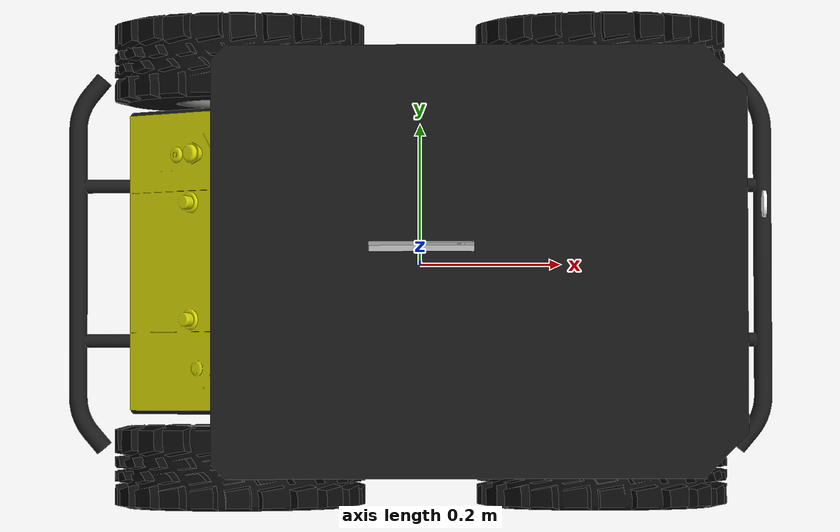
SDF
<?xml version='1.0' encoding='utf-8'?>
<sdf version="1.6">
  <model name="costar_husky_sensor_config_1">
    <link name="base_link">
      <pose frame="">0 0 0 0 -0 0</pose>
      <inertial>
        <pose frame="">0 0 0.062329 0 -0 0</pose>
        <mass>46.064</mass>
        <inertia>
          <ixx>0.615397</ixx>
          <ixy>-0.0240585</ixy>
          <ixz>-0.120749</ixz>
          <iyy>1.75388</iyy>
          <iyz>-0.0028322</iyz>
          <izz>2.03641</izz>
        </inertia>
      </inertial>
      <collision name="base_link_collision">
        <pose frame="">0 0 0.12 0 0 0</pose>
        <geometry>
          <box>
            <size>0.9874 0.5709 0.05</size>
          </box>
        </geometry>
      </collision>
      <collision name="base_link_collision_bottom">
        <pose frame="">0 0 0.046 0 0 0</pose>
        <geometry>
          <box>
            <size>0.80 0.5709 0.095</size>
          </box>
        </geometry>
      </collision>
      <collision name="base_link_collision_1">
        <pose frame="">0 0 0.185625 0 -0 0</pose>
        <geometry>
          <box>
            <size>0.78992 0.5709 0.12375</size>
          </box>
        </geometry>
      </collision>
      <collision name="base_link_fixed_joint_lump__camera/camera_link_collision_2">
        <pose frame="">0.488 0 0.272 0 -0 0</pose>
        <geometry>
          <box>
            <size>0.0078 0.13 0.0192</size>
          </box>
        </geometry>
        <surface>
          <contact>
            <ode>
              <kp>1e+13</kp>
              <kd>1</kd>
            </ode>
          </contact>
          <friction>
            <ode>
              <mu2>1</mu2>
              <fdir1>0 0 0</fdir1>
            </ode>
          </friction>
        </surface>
      </collision>
      <collision name="base_link_fixed_joint_lump__top_plate_link_collision_3">
        <pose frame="">0.0812 0 0.245 0 -0 0</pose>
        <geometry>
          <mesh>
            <scale>1 1 1</scale>
            <uri>meshes/top_plate.dae</uri>
          </mesh>
        </geometry>
      </collision>
      <collision name="base_link_fixed_joint_lump__top_plate_link_collision_4">
        <pose frame="">0.0812 0 0.245 0 -0 0</pose>
        <geometry>
          <box>
            <size>0.32 0.41 0.09</size>
          </box>
        </geometry>
      </collision>
      <visual name="base_link_visual">
        <pose frame="">0 0 0 0 -0 0</pose>
        <geometry>
          <mesh>
            <scale>1 1 1</scale>
            <uri>meshes/base_link.dae</uri>
          </mesh>
        </geometry>
      </visual>
      <visual name="base_link_fixed_joint_lump__camera/camera_link_visual_1">
        <pose frame="">0.0012 0 0.716 0 -0.3 1.57079632679</pose>
        <geometry>
          <mesh>
            <uri>meshes/realsense.dae</uri>
          </mesh>
        </geometry>
      </visual>
      <visual name="base_link_fixed_joint_lump__front_bumper_link_visual_3">
        <pose frame="">0.48 0 0.091 0 -0 0</pose>
        <geometry>
          <mesh>
            <scale>1 1 1</scale>
            <uri>meshes/bumper.dae</uri>
          </mesh>
        </geometry>
      </visual>
      <visual name="base_link_fixed_joint_lump__rear_bumper_link_visual_4">
        <pose frame="">-0.48 0 0.091 0 -0 3.14159</pose>
        <geometry>
          <mesh>
            <scale>1 1 1</scale>
            <uri>meshes/bumper.dae</uri>
          </mesh>
        </geometry>
      </visual>
      <visual name="base_link_fixed_joint_lump__top_chassis_link_visual_5">
        <pose frame="">0 0 0 0 -0 0</pose>
        <geometry>
          <mesh>
            <scale>1 1 1</scale>
            <uri>meshes/top_chassis.dae</uri>
          </mesh>
        </geometry>
      </visual>
      <visual name="base_link_fixed_joint_lump__top_plate_link_visual_6">
        <pose frame="">0.0812 0 0.245 0 -0 0</pose>
        <geometry>
          <mesh>
            <scale>1 1 1</scale>
            <uri>meshes/top_plate.dae</uri>
          </mesh>
        </geometry>
      </visual>
      <velocity_decay />
      <self_collide>0</self_collide>
      <enable_wind>0</enable_wind>
      <kinematic>0</kinematic>
      <sensor name="realsense_d435" type="rgbd_camera">
        <update_rate>30</update_rate>
        <pose frame="">0.0012 0 0.716 0 -0.3 1.5708</pose>
        <camera name="camera">
          <horizontal_fov>1.0472</horizontal_fov>
          <lens>
            <intrinsics>
              <!-- fx = fy = width / ( 2 * tan (hfov / 2 ) ) -->
              <fx>554.25469</fx>
              <fy>554.25469</fy>
              <!-- cx = ( width + 1 ) / 2 -->
              <cx>320.5</cx>
              <!-- cy = ( height + 1 ) / 2 -->
              <cy>240.5</cy>
              <s>0</s>
            </intrinsics>
          </lens>
          <distortion>
            <k1>0.0</k1>
            <k2>0.0</k2>
            <k3>0.0</k3>
            <p1>0.0</p1>
            <p2>0.0</p2>
            <center>0.5 0.5</center>
          </distortion>
          <image>
            <width>1080</width>
            <height>1380</height>
            <format>R8G8B8</format>
          </image>
          <clip>
            <near>0.01</near>
            <far>300</far>
          </clip>
          <depth_camera>
            <clip>
              <near>0.1</near>
              <far>10</far>
            </clip>
          </depth_camera>
          <noise>
            <type>gaussian</type>
            <mean>0</mean>
            <stddev>0.007</stddev>
          </noise>
        </camera>
      </sensor>
      <gravity>1</gravity>
      <velocity_decay />

      <!-- GPS -->
      <sensor name="gps" type="navsat">
        <spherical_coordinates>-34.67093619854793 -56.34362977503078 0</spherical_coordinates>
      </sensor>
      <light name="flashlight_flashlight_light_source_lamp_light" type="spot">
        <pose frame="">0.48 0.08 0.12 3.141592653589793 1.5707926535897934 -0.0015926535897931</pose>
        <attenuation>
          <range>50</range>
          <linear>0</linear>
          <constant>0.1</constant>
          <quadratic>0.0025</quadratic>
        </attenuation>
        <diffuse>0.8 0.8 0.5 1</diffuse>
        <specular>0.8 0.8 0.5 1</specular>
        <spot>
          <inner_angle>1.2</inner_angle>
          <outer_angle>1.3</outer_angle>
          <falloff>1</falloff>
        </spot>
        <direction>0 0 -1</direction>
      </light>
      <visual name="flashlight_flashlight_light_source_lamp_viz_visual">
        <pose>0.48 0.08 0.12 3.141592653589793 1.5707926535897934 -0.0015926535897931</pose>
        <geometry>
          <cylinder>
            <radius>0.019</radius>
            <length>0.005</length>
          </cylinder>
        </geometry>
        <transparency>0</transparency>
        <material>
          <ambient>1 1 1 1</ambient>
          <diffuse>1 1 1 1</diffuse>
          <specular>1 1 1 1</specular>
          <emissive>1 1 1 1</emissive>
        </material>
      </visual>

      <sensor name="imu_sensor" type="imu">
        <always_on>1</always_on>
        <update_rate>50</update_rate>
        <imu>
          <enable_orientation>0</enable_orientation>
          <angular_velocity>
            <x>
              <noise type="gaussian">
                <mean>0</mean>
                <stddev>0.009</stddev>
                <bias_mean>0.00075</bias_mean>
                <bias_stddev>0.005</bias_stddev>
                <dynamic_bias_stddev>0.00002</dynamic_bias_stddev>
                <dynamic_bias_correlation_time>400.0</dynamic_bias_correlation_time>
                <precision>0.00025</precision>
              </noise>
            </x>
            <y>
              <noise type="gaussian">
                <mean>0</mean>
                <stddev>0.009</stddev>
                <bias_mean>0.00075</bias_mean>
                <bias_stddev>0.005</bias_stddev>
                <dynamic_bias_stddev>0.00002</dynamic_bias_stddev>
                <dynamic_bias_correlation_time>400.0</dynamic_bias_correlation_time>
                <precision>0.00025</precision>
              </noise>
            </y>
            <z>
              <noise type="gaussian">
                <mean>0</mean>
                <stddev>0.009</stddev>
                <bias_mean>0.00075</bias_mean>
                <bias_stddev>0.005</bias_stddev>
                <dynamic_bias_stddev>0.00002</dynamic_bias_stddev>
                <dynamic_bias_correlation_time>400.0</dynamic_bias_correlation_time>
                <precision>0.00025</precision>
              </noise>
            </z>
          </angular_velocity>
          <linear_acceleration>
            <x>
              <noise type="gaussian">
                <mean>0</mean>
                <stddev>0.021</stddev>
                <bias_mean>0.05</bias_mean>
                <bias_stddev>0.0075</bias_stddev>
                <dynamic_bias_stddev>0.000375</dynamic_bias_stddev>
                <dynamic_bias_correlation_time>175.0</dynamic_bias_correlation_time>
                <precision>0.005</precision>
              </noise>
            </x>
            <y>
              <noise type="gaussian">
                <mean>0</mean>
                <stddev>0.021</stddev>
                <bias_mean>0.05</bias_mean>
                <bias_stddev>0.0075</bias_stddev>
                <dynamic_bias_stddev>0.000375</dynamic_bias_stddev>
                <dynamic_bias_correlation_time>175.0</dynamic_bias_correlation_time>
                <precision>0.005</precision>
              </noise>
            </y>
            <z>
              <noise type="gaussian">
                <mean>0</mean>
                <stddev>0.021</stddev>
                <bias_mean>0.05</bias_mean>
                <bias_stddev>0.0075</bias_stddev>
                <dynamic_bias_stddev>0.000375</dynamic_bias_stddev>
                <dynamic_bias_correlation_time>175.0</dynamic_bias_correlation_time>
                <precision>0.005</precision>
              </noise>
            </z>
          </linear_acceleration>
        </imu>
      </sensor>
    </link>
    <link name="front_left_wheel_link">
      <pose frame="">0.256 0.2854 0.03282 0 -0 0</pose>
      <inertial>
        <pose frame="">0 0 0 0 -0 0</pose>
        <mass>2.637</mass>
        <inertia>
          <ixx>0.02467</ixx>
          <ixy>0</ixy>
          <ixz>0</ixz>
          <iyy>0.04411</iyy>
          <iyz>0</iyz>
          <izz>0.02467</izz>
        </inertia>
      </inertial>
      <collision name="front_left_wheel_link_collision">
        <pose frame="">0 0 0 1.5707963267948966 -0 0</pose>
        <geometry>
          <cylinder>
            <length>0.1143</length>
            <radius>0.1651</radius>
          </cylinder>
        </geometry>
        <surface>
          <contact>
            <ode>
              <kp>1e+07</kp>
              <kd>1</kd>
            </ode>
          </contact>
          <friction>
            <ode>
              <mu>0.5</mu>
              <mu2>1</mu2>
              <slip1>0.00062</slip1>
              <slip2>0</slip2>
              <fdir1>0 0 1</fdir1>
            </ode>
          </friction>
        </surface>
      </collision>
      <visual name="front_left_wheel_link_visual">
        <pose frame="">0 0 0 0 -0 0</pose>
        <geometry>
          <mesh>
            <scale>1 1 1</scale>
            <uri>meshes/wheel.dae</uri>
          </mesh>
        </geometry>
      </visual>
      <gravity>1</gravity>
      <velocity_decay />
    </link>
    <joint name="front_left_wheel_joint" type="revolute">
      <child>front_left_wheel_link</child>
      <parent>base_link</parent>
      <axis>
        <xyz>0 1 0</xyz>
        <limit>
          <lower>-1e+16</lower>
          <upper>1e+16</upper>
        </limit>
        <dynamics>
          <spring_reference>0</spring_reference>
          <spring_stiffness>0</spring_stiffness>
        </dynamics>
        <use_parent_model_frame>1</use_parent_model_frame>
      </axis>
    </joint>
    <link name="front_right_wheel_link">
      <pose frame="">0.256 -0.2854 0.03282 0 -0 0</pose>
      <inertial>
        <pose frame="">0 0 0 0 -0 0</pose>
        <mass>2.637</mass>
        <inertia>
          <ixx>0.02467</ixx>
          <ixy>0</ixy>
          <ixz>0</ixz>
          <iyy>0.04411</iyy>
          <iyz>0</iyz>
          <izz>0.02467</izz>
        </inertia>
      </inertial>
      <collision name="front_right_wheel_link_collision">
        <pose frame="">0 0 0 1.5707963267948966 -0 0</pose>
        <geometry>
          <cylinder>
            <length>0.1143</length>
            <radius>0.1651</radius>
          </cylinder>
        </geometry>
        <surface>
          <contact>
            <ode>
              <kp>1e+07</kp>
              <kd>1</kd>
            </ode>
          </contact>
          <friction>
            <ode>
              <mu>0.5</mu>
              <mu2>1</mu2>
              <slip1>0.00062</slip1>
              <slip2>0</slip2>
              <fdir1>0 0 1</fdir1>
            </ode>
          </friction>
        </surface>
      </collision>
      <visual name="front_right_wheel_link_visual">
        <pose frame="">0 0 0 0 -0 0</pose>
        <geometry>
          <mesh>
            <scale>1 1 1</scale>
            <uri>meshes/wheel.dae</uri>
          </mesh>
        </geometry>
      </visual>
      <gravity>1</gravity>
      <velocity_decay />
    </link>
    <joint name="front_right_wheel_joint" type="revolute">
      <child>front_right_wheel_link</child>
      <parent>base_link</parent>
      <axis>
        <xyz>0 1 0</xyz>
        <limit>
          <lower>-1e+16</lower>
          <upper>1e+16</upper>
        </limit>
        <dynamics>
          <spring_reference>0</spring_reference>
          <spring_stiffness>0</spring_stiffness>
        </dynamics>
        <use_parent_model_frame>1</use_parent_model_frame>
      </axis>
    </joint>
    <link name="rear_left_wheel_link">
      <pose frame="">-0.256 0.2854 0.03282 0 -0 0</pose>
      <inertial>
        <pose frame="">0 0 0 0 -0 0</pose>
        <mass>2.637</mass>
        <inertia>
          <ixx>0.02467</ixx>
          <ixy>0</ixy>
          <ixz>0</ixz>
          <iyy>0.04411</iyy>
          <iyz>0</iyz>
          <izz>0.02467</izz>
        </inertia>
      </inertial>
      <collision name="rear_left_wheel_link_collision">
        <pose frame="">0 0 0 1.5707963267948966 -0 0</pose>
        <geometry>
          <cylinder>
            <length>0.1143</length>
            <radius>0.1651</radius>
          </cylinder>
        </geometry>
        <surface>
          <contact>
            <ode>
              <kp>1e+07</kp>
              <kd>1</kd>
            </ode>
          </contact>
          <friction>
            <ode>
              <mu>0.5</mu>
              <mu2>1</mu2>
              <slip1>0.00062</slip1>
              <slip2>0</slip2>
              <fdir1>0 0 1</fdir1>
            </ode>
          </friction>
        </surface>
      </collision>
      <visual name="rear_left_wheel_link_visual">
        <pose frame="">0 0 0 0 -0 0</pose>
        <geometry>
          <mesh>
            <scale>1 1 1</scale>
            <uri>meshes/wheel.dae</uri>
          </mesh>
        </geometry>
      </visual>
      <gravity>1</gravity>
      <velocity_decay />
    </link>
    <joint name="rear_left_wheel_joint" type="revolute">
      <child>rear_left_wheel_link</child>
      <parent>base_link</parent>
      <axis>
        <xyz>0 1 0</xyz>
        <limit>
          <lower>-1e+16</lower>
          <upper>1e+16</upper>
        </limit>
        <dynamics>
          <spring_reference>0</spring_reference>
          <spring_stiffness>0</spring_stiffness>
        </dynamics>
        <use_parent_model_frame>1</use_parent_model_frame>
      </axis>
    </joint>
    <link name="rear_right_wheel_link">
      <pose frame="">-0.256 -0.2854 0.03282 0 -0 0</pose>
      <inertial>
        <pose frame="">0 0 0 0 -0 0</pose>
        <mass>2.637</mass>
        <inertia>
          <ixx>0.02467</ixx>
          <ixy>0</ixy>
          <ixz>0</ixz>
          <iyy>0.04411</iyy>
          <iyz>0</iyz>
          <izz>0.02467</izz>
        </inertia>
      </inertial>
      <collision name="rear_right_wheel_link_collision">
        <pose frame="">0 0 0 1.5707963267948966 -0 0</pose>
        <geometry>
          <cylinder>
            <length>0.1143</length>
            <radius>0.1651</radius>
          </cylinder>
        </geometry>
        <surface>
          <contact>
            <ode>
              <kp>1e+07</kp>
              <kd>1</kd>
            </ode>
          </contact>
          <friction>
            <ode>
              <mu>0.5</mu>
              <mu2>1</mu2>
              <slip1>0.00062</slip1>
              <slip2>0</slip2>
              <fdir1>0 0 1</fdir1>
            </ode>
          </friction>
        </surface>
      </collision>
      <visual name="rear_right_wheel_link_visual">
        <pose frame="">0 0 0 0 -0 0</pose>
        <geometry>
          <mesh>
            <scale>1 1 1</scale>
            <uri>meshes/wheel.dae</uri>
          </mesh>
        </geometry>
      </visual>
      <gravity>1</gravity>
      <velocity_decay />
    </link>
    <joint name="rear_right_wheel_joint" type="revolute">
      <child>rear_right_wheel_link</child>
      <parent>base_link</parent>
      <axis>
        <xyz>0 1 0</xyz>
        <limit>
          <lower>-1e+16</lower>
          <upper>1e+16</upper>
        </limit>
        <dynamics>
          <spring_reference>0</spring_reference>
          <spring_stiffness>0</spring_stiffness>
        </dynamics>
        <use_parent_model_frame>1</use_parent_model_frame>
      </axis>
    </joint>
    <static>0</static>
  </model>
</sdf>
